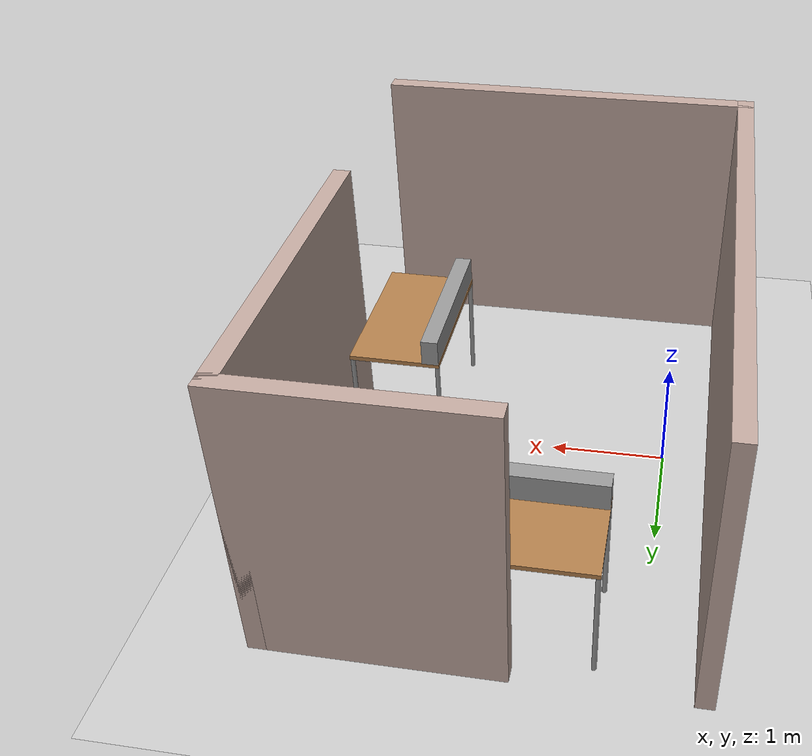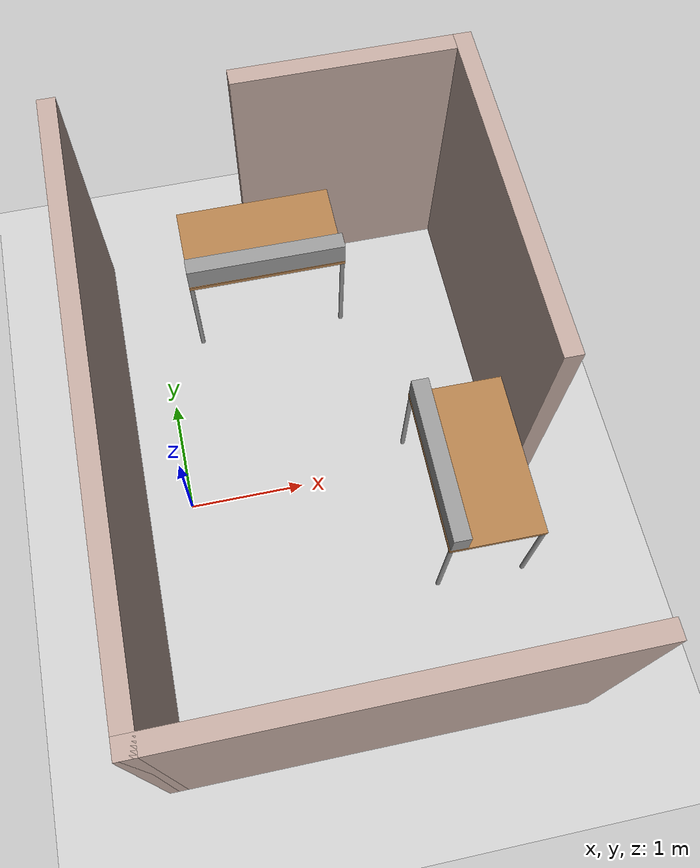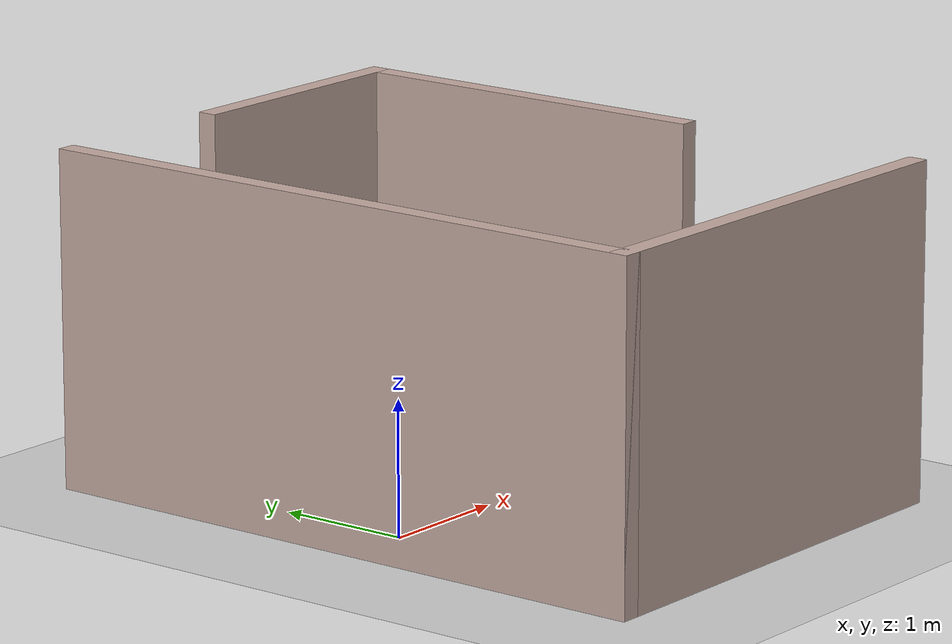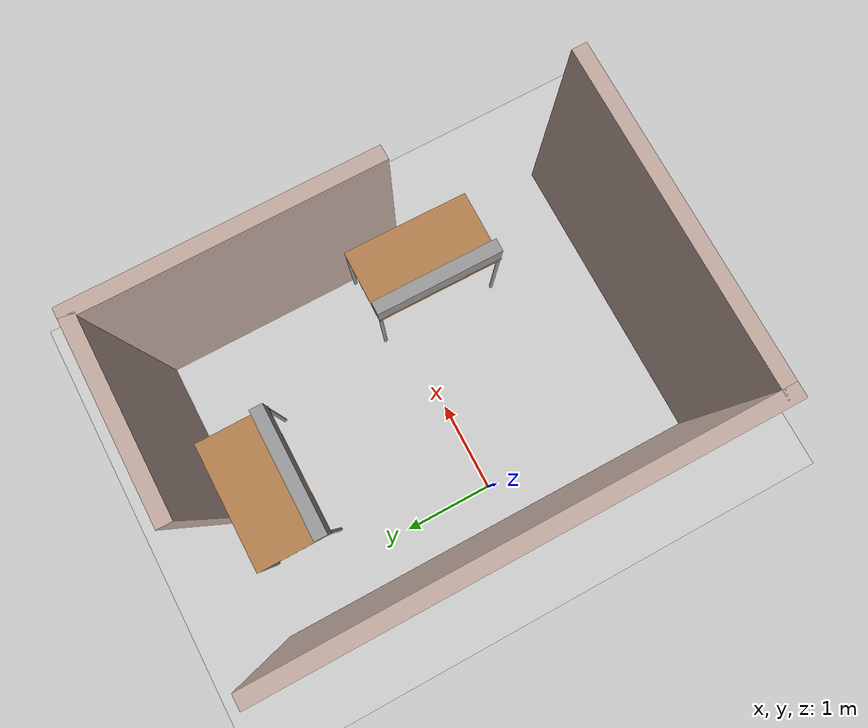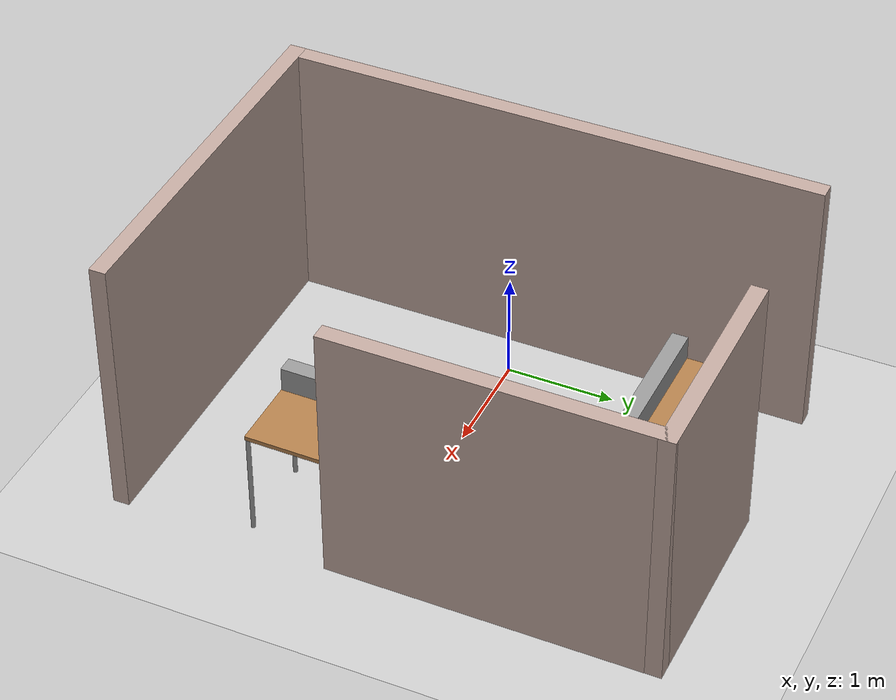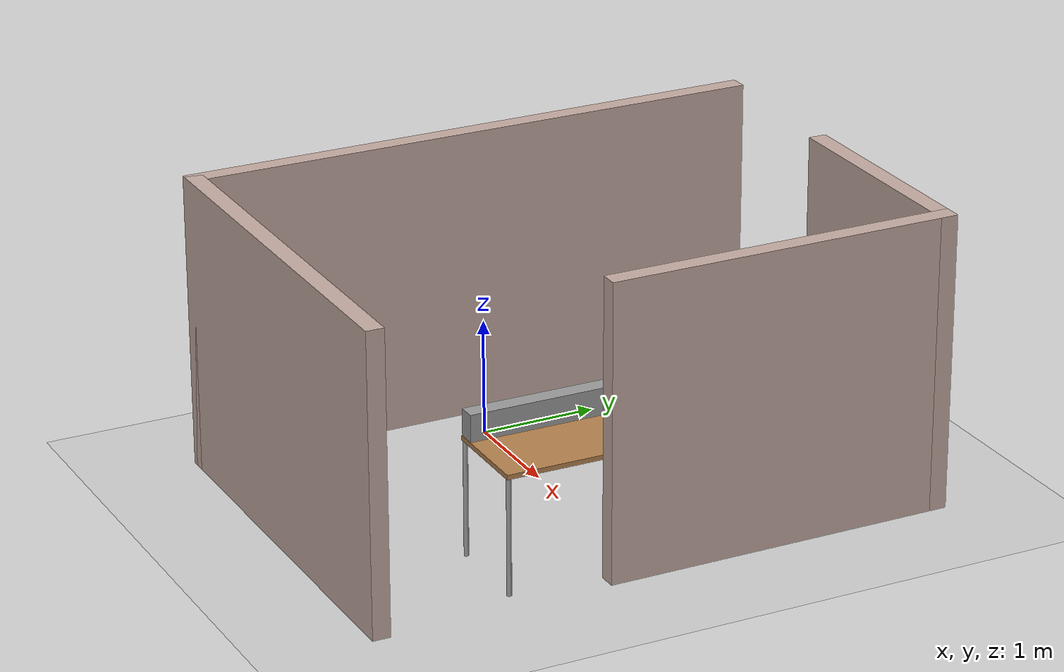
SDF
<sdf version="1.6">
 <world name="default">
  <light name="sun" type="directional">
   <pose>0 0 10 0 -0 0</pose>
   <diffuse>0.8 0.8 0.8 1</diffuse>
   <specular>0.1 0.1 0.1 1</specular>
   <attenuation>
    <range>1000</range>
    <constant>0.9</constant>
    <linear>0.01</linear>
    <quadratic>0.001</quadratic>
   </attenuation>
   <direction>-0.5 0.5 -1</direction>
  </light>
  <model name="ground_plane">
   <static>1</static>
   <link name="link">
    <collision name="collision">
     <geometry><plane><normal>0 0 1</normal><size>100 100</size></plane></geometry>
     <surface><friction><ode><mu>100</mu><mu2>50</mu2></ode></friction></surface>
    </collision>
    <visual name="visual">
     <cast_shadows>0</cast_shadows>
     <geometry><plane><normal>0 0 1</normal><size>100 100</size></plane></geometry>
     <material>
      <script><uri>file://media/materials/scripts/gazebo.material</uri><name>Gazebo/Grey</name></script>
     </material>
    </visual>
   </link>
  </model>
  <gravity>0 0 -9.8</gravity>
  <magnetic_field>6e-06 2.3e-05 -4.2e-05</magnetic_field>
  <atmosphere type="adiabatic"/>
  <physics name="default_physics" default="0" type="ode">
   <max_step_size>0.001</max_step_size>
   <real_time_factor>1</real_time_factor>
   <real_time_update_rate>1000</real_time_update_rate>
  </physics>
  <scene><ambient>0.4 0.4 0.4 1</ambient><background>0.7 0.7 0.7 1</background><shadows>1</shadows></scene>
  <spherical_coordinates>
   <surface_model>EARTH_WGS84</surface_model>
   <latitude_deg>0</latitude_deg>
   <longitude_deg>0</longitude_deg>
   <elevation>0</elevation>
   <heading_deg>0</heading_deg>
  </spherical_coordinates>
  <model name="table_test_leon">
   <pose>1.20549 0.133278 0 0 -0 3.14</pose>
   <link name="Wall_10">
    <collision name="Wall_10_Collision">
     <geometry><box><size>2 0.15 2.5</size></box></geometry>
     <pose>0 0 1.25 0 -0 0</pose>
    </collision>
    <visual name="Wall_10_Visual">
     <pose>0 0 1.25 0 -0 0</pose>
     <geometry><box><size>2 0.15 2.5</size></box></geometry>
     <material>
      <script><uri>file://media/materials/scripts/gazebo.material</uri><name>Gazebo/Grey</name></script>
      <ambient>0.760784 0.662745 0.627451 1</ambient>
     </material>
    </visual>
    <pose>-0.75 -2.425 0 0 -0 0</pose>
   </link>
   <link name="Wall_12">
    <collision name="Wall_12_Collision">
     <geometry><box><size>3 0.15 2.5</size></box></geometry>
     <pose>0 0 1.25 0 -0 0</pose>
    </collision>
    <visual name="Wall_12_Visual">
     <pose>0 0 1.25 0 -0 0</pose>
     <geometry><box><size>3 0.15 2.5</size></box></geometry>
     <material>
      <script><uri>file://media/materials/scripts/gazebo.material</uri><name>Gazebo/Grey</name></script>
      <ambient>0.760784 0.662745 0.627451 1</ambient>
     </material>
    </visual>
    <pose>-1.675 -1 0 0 -0 1.5708</pose>
   </link>
   <link name="Wall_2">
    <collision name="Wall_2_Collision">
     <geometry><box><size>3.5 0.15 2.5</size></box></geometry>
     <pose>0 0 1.25 0 -0 0</pose>
    </collision>
    <visual name="Wall_2_Visual">
     <pose>0 0 1.25 0 -0 0</pose>
     <geometry><box><size>3.5 0.15 2.5</size></box></geometry>
     <material>
      <script><uri>file://media/materials/scripts/gazebo.material</uri><name>Gazebo/Grey</name></script>
      <ambient>0.760784 0.662745 0.627451 1</ambient>
     </material>
    </visual>
    <pose>0 2.425 0 0 -0 0</pose>
   </link>
   <link name="Wall_4">
    <collision name="Wall_4_Collision">
     <geometry><box><size>5 0.15 2.5</size></box></geometry>
     <pose>0 0 1.25 0 -0 0</pose>
    </collision>
    <visual name="Wall_4_Visual">
     <pose>0 0 1.25 0 -0 0</pose>
     <geometry><box><size>5 0.15 2.5</size></box></geometry>
     <material>
      <script><uri>file://media/materials/scripts/gazebo.material</uri><name>Gazebo/Grey</name></script>
      <ambient>0.760784 0.662745 0.627451 1</ambient>
     </material>
    </visual>
    <pose>1.675 0 0 0 0 -1.5708</pose>
   </link>
   <static>1</static>
  </model>
  <model name="table">
   <static>0</static>
   <link name="link">
    <collision name="surface">
     <pose>0 0 1 0 -0 0</pose>
     <geometry><box><size>1.5 0.8 0.03</size></box></geometry>
     <surface><friction><ode><mu>0.6</mu><mu2>0.6</mu2></ode></friction></surface>
    </collision>
    <visual name="visual1">
     <pose>0 0 1 0 -0 0</pose>
     <geometry><box><size>1.4 0.8 0.04</size></box></geometry>
     <material>
      <script><uri>file://media/materials/scripts/gazebo.material</uri><name>Gazebo/Wood</name></script>
     </material>
    </visual>
    <collision name="front_left_leg">
     <pose>0.68 0.38 0.5 0 -0 0</pose>
     <geometry><cylinder><radius>0.02</radius><length>1</length></cylinder></geometry>
    </collision>
    <visual name="front_left_leg">
     <pose>0.68 0.38 0.5 0 -0 0</pose>
     <geometry><cylinder><radius>0.02</radius><length>1</length></cylinder></geometry>
     <material>
      <script><uri>file://media/materials/scripts/gazebo.material</uri><name>Gazebo/Grey</name></script>
     </material>
    </visual>
    <collision name="front_right_leg">
     <pose>0.68 -0.38 0.5 0 -0 0</pose>
     <geometry><cylinder><radius>0.02</radius><length>1</length></cylinder></geometry>
    </collision>
    <visual name="front_right_leg">
     <pose>0.68 -0.38 0.5 0 -0 0</pose>
     <geometry><cylinder><radius>0.02</radius><length>1</length></cylinder></geometry>
     <material>
      <script><uri>file://media/materials/scripts/gazebo.material</uri><name>Gazebo/Grey</name></script>
     </material>
    </visual>
    <collision name="back_right_leg">
     <pose>-0.68 -0.38 0.5 0 -0 0</pose>
     <geometry><cylinder><radius>0.02</radius><length>1</length></cylinder></geometry>
    </collision>
    <visual name="back_right_leg">
     <pose>-0.68 -0.38 0.5 0 -0 0</pose>
     <geometry><cylinder><radius>0.02</radius><length>1</length></cylinder></geometry>
     <material>
      <script><uri>file://media/materials/scripts/gazebo.material</uri><name>Gazebo/Grey</name></script>
     </material>
    </visual>
    <collision name="back_left_leg">
     <pose>-0.68 0.38 0.5 0 -0 0</pose>
     <geometry><cylinder><radius>0.02</radius><length>1</length></cylinder></geometry>
    </collision>
    <visual name="back_left_leg">
     <pose>-0.68 0.38 0.5 0 -0 0</pose>
     <geometry><cylinder><radius>0.02</radius><length>1</length></cylinder></geometry>
     <material>
      <script><uri>file://media/materials/scripts/gazebo.material</uri><name>Gazebo/Grey</name></script>
     </material>
    </visual>
    <inertial>
     <inertia><ixx>1</ixx><ixy>0</ixy><ixz>0</ixz><iyy>1</iyy><iyz>0</iyz><izz>1</izz></inertia>
     <mass>1</mass>
    </inertial>
   </link>
   <pose>1.03608 2.03024 -7e-06 0 -1e-05 2.5e-05</pose>
  </model>
  <model name="table_0">
   <static>0</static>
   <link name="link">
    <collision name="surface">
     <pose>0 0 1 0 -0 0</pose>
     <geometry><box><size>1.5 0.8 0.03</size></box></geometry>
     <surface><friction><ode><mu>0.6</mu><mu2>0.6</mu2></ode></friction></surface>
    </collision>
    <visual name="visual1">
     <pose>0 0 1 0 -0 0</pose>
     <geometry><box><size>1.4 0.8 0.04</size></box></geometry>
     <material>
      <script><uri>file://media/materials/scripts/gazebo.material</uri><name>Gazebo/Wood</name></script>
     </material>
    </visual>
    <collision name="front_left_leg">
     <pose>0.68 0.38 0.5 0 -0 0</pose>
     <geometry><cylinder><radius>0.02</radius><length>1</length></cylinder></geometry>
    </collision>
    <visual name="front_left_leg">
     <pose>0.68 0.38 0.5 0 -0 0</pose>
     <geometry><cylinder><radius>0.02</radius><length>1</length></cylinder></geometry>
     <material>
      <script><uri>file://media/materials/scripts/gazebo.material</uri><name>Gazebo/Grey</name></script>
     </material>
    </visual>
    <collision name="front_right_leg">
     <pose>0.68 -0.38 0.5 0 -0 0</pose>
     <geometry><cylinder><radius>0.02</radius><length>1</length></cylinder></geometry>
    </collision>
    <visual name="front_right_leg">
     <pose>0.68 -0.38 0.5 0 -0 0</pose>
     <geometry><cylinder><radius>0.02</radius><length>1</length></cylinder></geometry>
     <material>
      <script><uri>file://media/materials/scripts/gazebo.material</uri><name>Gazebo/Grey</name></script>
     </material>
    </visual>
    <collision name="back_right_leg">
     <pose>-0.68 -0.38 0.5 0 -0 0</pose>
     <geometry><cylinder><radius>0.02</radius><length>1</length></cylinder></geometry>
    </collision>
    <visual name="back_right_leg">
     <pose>-0.68 -0.38 0.5 0 -0 0</pose>
     <geometry><cylinder><radius>0.02</radius><length>1</length></cylinder></geometry>
     <material>
      <script><uri>file://media/materials/scripts/gazebo.material</uri><name>Gazebo/Grey</name></script>
     </material>
    </visual>
    <collision name="back_left_leg">
     <pose>-0.68 0.38 0.5 0 -0 0</pose>
     <geometry><cylinder><radius>0.02</radius><length>1</length></cylinder></geometry>
    </collision>
    <visual name="back_left_leg">
     <pose>-0.68 0.38 0.5 0 -0 0</pose>
     <geometry><cylinder><radius>0.02</radius><length>1</length></cylinder></geometry>
     <material>
      <script><uri>file://media/materials/scripts/gazebo.material</uri><name>Gazebo/Grey</name></script>
     </material>
    </visual>
    <inertial>
     <inertia><ixx>1</ixx><ixy>0</ixy><ixz>0</ixz><iyy>1</iyy><iyz>0</iyz><izz>1</izz></inertia>
     <mass>1</mass>
    </inertial>
   </link>
   <pose>2.37206 -0.452285 -8e-06 0 -1.3e-05 -1.5796</pose>
  </model>
  <model name="unit_box_0">
   <pose>1.03688 1.70898 1.13169 0 2.2e-05 -0.003394</pose>
   <link name="link">
    <inertial>
     <mass>1</mass>
     <inertia>
      <ixx>0.166667</ixx>
      <ixy>0</ixy>
      <ixz>0</ixz>
      <iyy>0.166667</iyy>
      <iyz>0</iyz>
      <izz>0.166667</izz>
     </inertia>
    </inertial>
    <collision name="collision"><geometry><box><size>1.39887 0.146404 0.233428</size></box></geometry></collision>
    <visual name="visual">
     <geometry><box><size>1.39887 0.146404 0.233428</size></box></geometry>
     <material>
      <script><name>Gazebo/Grey</name><uri>file://media/materials/scripts/gazebo.material</uri></script>
     </material>
    </visual>
   </link>
  </model>
  <model name="unit_box_0_clone">
   <pose>2.05035 -0.446352 1.13167 -1e-06 4.5e-05 -1.57704</pose>
   <link name="link">
    <inertial>
     <mass>1</mass>
     <inertia>
      <ixx>0.166667</ixx>
      <ixy>0</ixy>
      <ixz>0</ixz>
      <iyy>0.166667</iyy>
      <iyz>0</iyz>
      <izz>0.166667</izz>
     </inertia>
    </inertial>
    <collision name="collision"><geometry><box><size>1.39887 0.146404 0.233428</size></box></geometry></collision>
    <visual name="visual">
     <geometry><box><size>1.39887 0.146404 0.233428</size></box></geometry>
     <material>
      <script><name>Gazebo/Grey</name><uri>file://media/materials/scripts/gazebo.material</uri></script>
     </material>
    </visual>
   </link>
  </model>
 </world>
</sdf>
